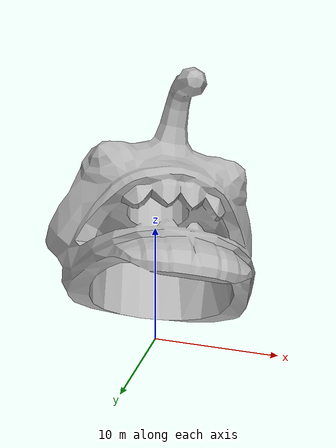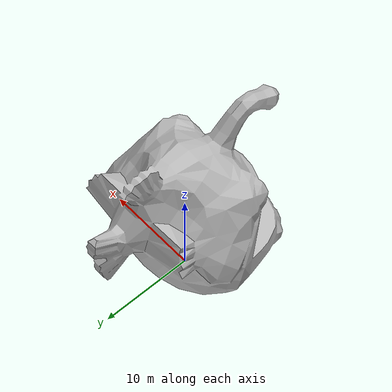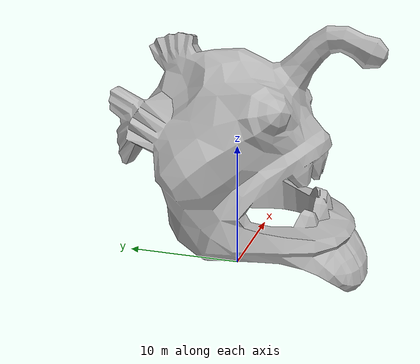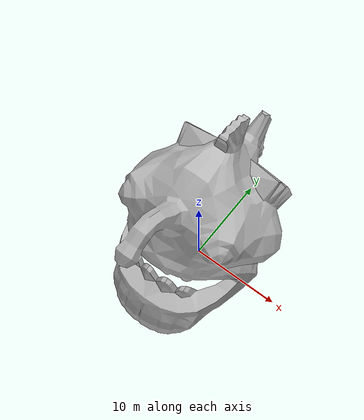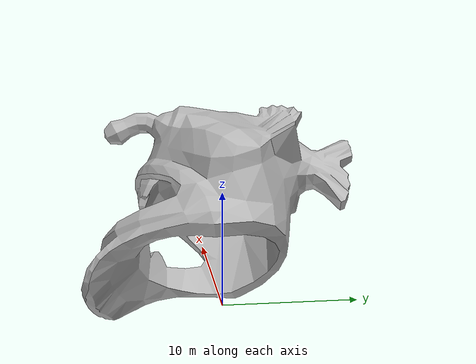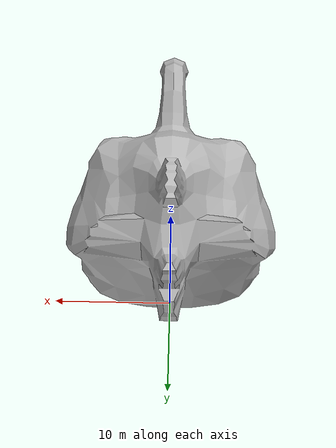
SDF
<?xml version='1.0'?>
<sdf version="1.6">
  <model name="fish">
    <pose>0 0 0 0 0 0</pose>
    <static>true</static>
    <link name="link">
     <collision name="collision">
        <geometry>
          <mesh>
	    <uri>model://fish/meshes/fish.stl</uri>
	  </mesh>
	</geometry>
      </collision>
      <visual name="visual">
        <geometry>
          <mesh>
	    <uri>model://fish/meshes/fish.stl</uri>
          </mesh>
        </geometry>
      </visual>
    </link>
  </model>
</sdf>
